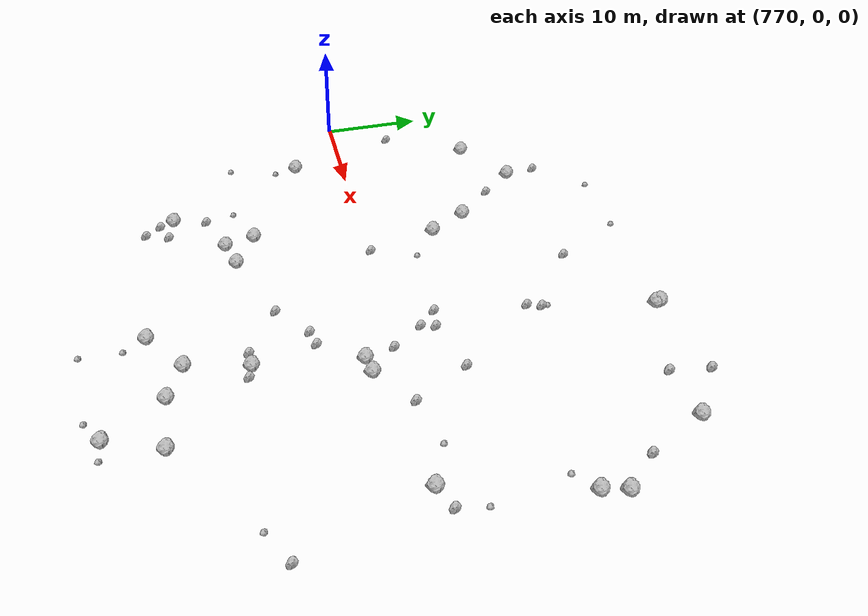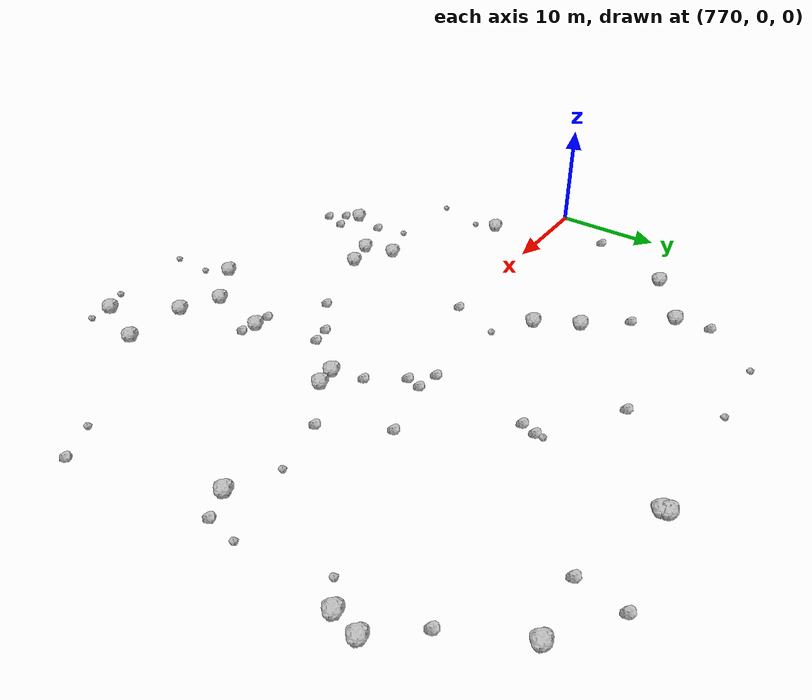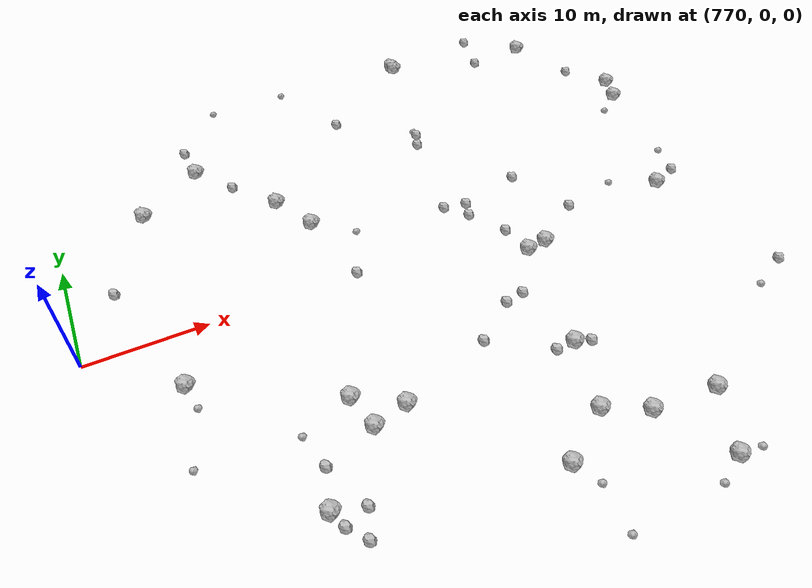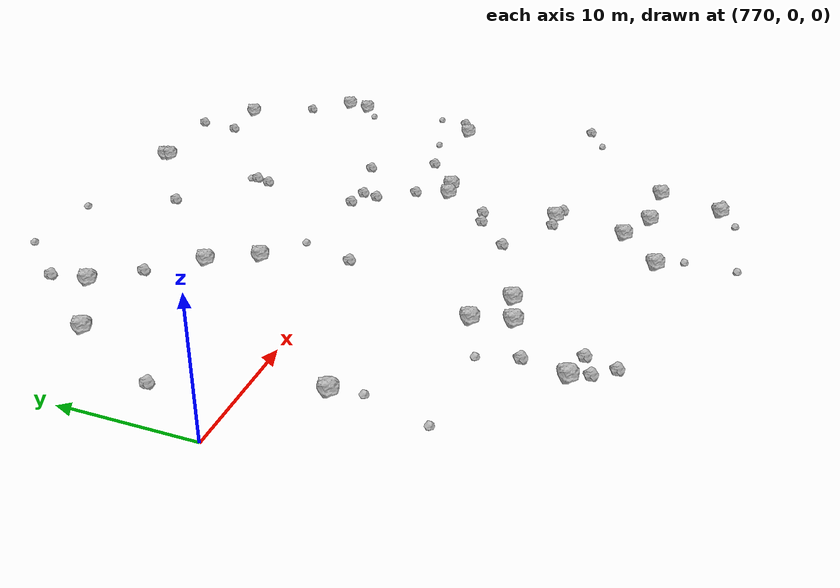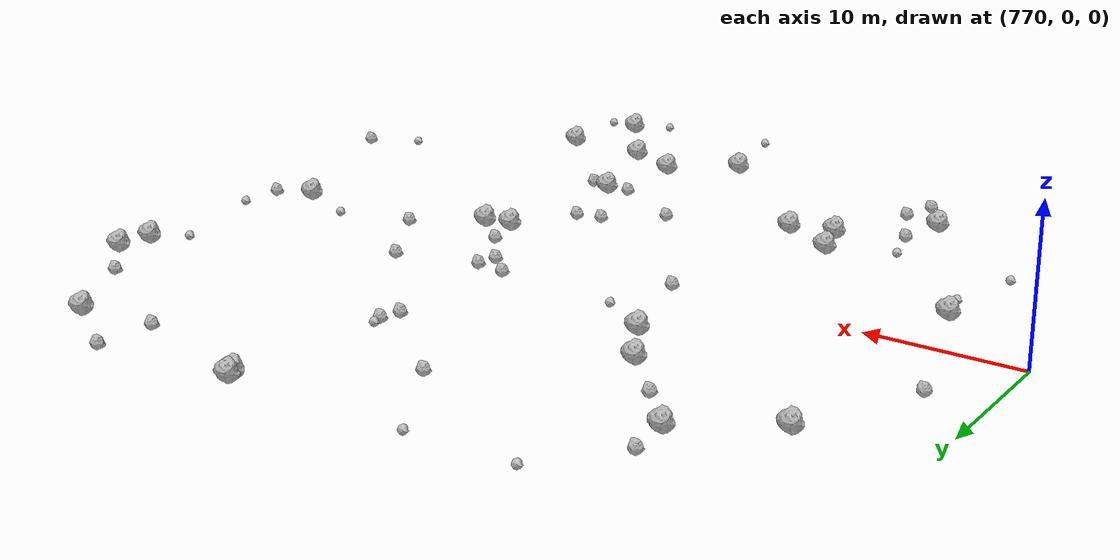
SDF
<sdf version="1.6">
 <world name="default">
  <include><uri>model://sun</uri></include>
  <model name="rock1_20_4">
   <include><uri>model://rock1</uri><pose>791.4666425375727 -13.03058636200091 0.5 0 0 0</pose></include>
  </model>
  <model name="rock1_20_5">
   <include><uri>model://rock1</uri><pose>776.9603028586158 -5.022826929092009 0.5 0 0 0</pose></include>
  </model>
  <model name="rock1_20_6">
   <include><uri>model://rock1</uri><pose>783.095286753257 17.14521938020757 0.5 0 0 0</pose></include>
  </model>
  <model name="rock1_20_7">
   <include><uri>model://rock1</uri><pose>805.854332027045 24.3754903026815 0.5 0 0 0</pose></include>
  </model>
  <model name="rock1_20_8">
   <include><uri>model://rock1</uri><pose>821.4512409785049 -0.9378456450066288 0.5 0 0 0</pose></include>
  </model>
  <model name="rock1_20_9">
   <include><uri>model://rock1</uri><pose>800.1190686362452 -22.0081662223617 0.5 0 0 0</pose></include>
  </model>
  <model name="rock1_20_10">
   <include><uri>model://rock1</uri><pose>788.7987412484498 10.511575808086377 0.5 0 0 0</pose></include>
  </model>
  <model name="rock1_20_11">
   <include><uri>model://rock1</uri><pose>807.6609838503462 -20.676786724740374 0.5 0 0 0</pose></include>
  </model>
  <model name="rock1_20_12">
   <include><uri>model://rock1</uri><pose>813.1277800060686 -20.979362107433204 0.5 0 0 0</pose></include>
  </model>
  <model name="rock1_20_13">
   <include><uri>model://rock1</uri><pose>790.8317216719361 6.855091411269306 0.5 0 0 0</pose></include>
  </model>
  <model name="rock1_20_14">
   <include><uri>model://rock1</uri><pose>788.6102454924543 -13.79744508564237 0.5 0 0 0</pose></include>
  </model>
  <model name="rock1_20_15">
   <include><uri>model://rock1</uri><pose>805.7602082515249 24.815229315916582 0.5 0 0 0</pose></include>
  </model>
  <model name="rock1_20_16">
   <include><uri>model://rock1</uri><pose>806.8023801786753 -3.4047949605102907 0.5 0 0 0</pose></include>
  </model>
  <model name="rock1_20_17">
   <include><uri>model://rock1</uri><pose>825.1268144340089 13.589820978090948 0.5 0 0 0</pose></include>
  </model>
  <model name="rock1_20_18">
   <include><uri>model://rock1</uri><pose>824.6021224888202 11.357103980984832 0.5 0 0 0</pose></include>
  </model>
  <model name="rock1_20_19">
   <include><uri>model://rock1</uri><pose>804.224759663391 -19.03799387916756 0.5 0 0 0</pose></include>
  </model>
  <model name="rock1_20_20">
   <include><uri>model://rock1</uri><pose>787.844442669956 -10.89560821022367 0.5 0 0 0</pose></include>
  </model>
  <model name="rock1_20_21">
   <include><uri>model://rock1</uri><pose>805.5210910758994 -13.21432595026517 0.5 0 0 0</pose></include>
  </model>
  <model name="rock1_20_22">
   <include><uri>model://rock1</uri><pose>808.5885384766866 -3.1349407200695687 0.5 0 0 0</pose></include>
  </model>
  <model name="rock1_20_23">
   <include><uri>model://rock1</uri><pose>777.5550138797414 13.551374894194801 0.5 0 0 0</pose></include>
  </model>
  <model name="rock1_20_24">
   <include><uri>model://rock1</uri><pose>811.2071798080663 -26.09429019685638 0.5 0 0 0</pose></include>
  </model>
  <model name="rock1_20_25">
   <include><uri>model://rock1</uri><pose>783.5454987637899 -18.572890875977727 0.5 0 0 0</pose></include>
  </model>
  <model name="rock1_20_26">
   <include><uri>model://rock1</uri><pose>819.3691722373898 22.367896556180916 0.5 0 0 0</pose></include>
  </model>
  <model name="rock2_20_0">
   <include><uri>model://rock2</uri><pose>784.3109311059033 -15.344758630019106 0.3 0 0 0</pose></include>
  </model>
  <model name="rock2_20_1">
   <include><uri>model://rock2</uri><pose>803.8589564383766 -13.268539937824727 0.3 0 0 0</pose></include>
  </model>
  <model name="rock2_20_2">
   <include><uri>model://rock2</uri><pose>785.9694563576141 -19.192726663313728 0.3 0 0 0</pose></include>
  </model>
  <model name="rock2_20_3">
   <include><uri>model://rock2</uri><pose>785.642235359449 14.038566041786417 0.3 0 0 0</pose></include>
  </model>
  <model name="rock2_20_4">
   <include><uri>model://rock2</uri><pose>797.2814012147419 18.45565408540385 0.3 0 0 0</pose></include>
  </model>
  <model name="rock2_20_5">
   <include><uri>model://rock2</uri><pose>803.8379526747592 13.911294230979053 0.3 0 0 0</pose></include>
  </model>
  <model name="rock2_20_6">
   <include><uri>model://rock2</uri><pose>784.0578042048338 -19.94218007441508 0.3 0 0 0</pose></include>
  </model>
  <model name="rock2_20_7">
   <include><uri>model://rock2</uri><pose>785.2116720055546 -21.412971863528266 0.3 0 0 0</pose></include>
  </model>
  <model name="rock2_20_8">
   <include><uri>model://rock2</uri><pose>822.1570713610363 16.81000178940225 0.3 0 0 0</pose></include>
  </model>
  <model name="rock2_20_9">
   <include><uri>model://rock2</uri><pose>804.2373948893746 3.649993591656603 0.3 0 0 0</pose></include>
  </model>
  <model name="rock2_20_10">
   <include><uri>model://rock2</uri><pose>803.3909284880732 12.604062208344168 0.3 0 0 0</pose></include>
  </model>
  <model name="rock2_20_11">
   <include><uri>model://rock2</uri><pose>823.68093332917 0.02991730289723904 0.3 0 0 0</pose></include>
  </model>
  <model name="rock2_20_12">
   <include><uri>model://rock2</uri><pose>806.7834557916229 -13.587207068536113 0.3 0 0 0</pose></include>
  </model>
  <model name="rock2_20_13">
   <include><uri>model://rock2</uri><pose>812.5684284924383 -0.2411073923276028 0.3 0 0 0</pose></include>
  </model>
  <model name="rock2_20_14">
   <include><uri>model://rock2</uri><pose>814.6101818042782 25.701480147162634 0.3 0 0 0</pose></include>
  </model>
  <model name="rock2_20_15">
   <include><uri>model://rock2</uri><pose>825.6253303992729 -12.707024717981326 0.3 0 0 0</pose></include>
  </model>
  <model name="rock2_20_16">
   <include><uri>model://rock2</uri><pose>802.440388021766 -7.6366658859135015 0.3 0 0 0</pose></include>
  </model>
  <model name="rock2_20_17">
   <include><uri>model://rock2</uri><pose>782.6997198246107 20.237022381771567 0.3 0 0 0</pose></include>
  </model>
  <model name="rock2_20_18">
   <include><uri>model://rock2</uri><pose>809.5965434521848 5.0176114047578935 0.3 0 0 0</pose></include>
  </model>
  <model name="rock2_20_19">
   <include><uri>model://rock2</uri><pose>799.0605065428991 -10.278466301921757 0.3 0 0 0</pose></include>
  </model>
  <model name="rock2_20_20">
   <include><uri>model://rock2</uri><pose>805.9930807961622 -0.6272269537310784 0.3 0 0 0</pose></include>
  </model>
  <model name="rock2_20_21">
   <include><uri>model://rock2</uri><pose>792.485672648338 0.10401497449198871 0.3 0 0 0</pose></include>
  </model>
  <model name="rock2_20_22">
   <include><uri>model://rock2</uri><pose>802.2200907102917 3.987119645588514 0.3 0 0 0</pose></include>
  </model>
  <model name="rock2_20_23">
   <include><uri>model://rock2</uri><pose>773.5955765236795 5.868531188666566 0.3 0 0 0</pose></include>
  </model>
  <model name="rock2_20_24">
   <include><uri>model://rock2</uri><pose>803.8840177607726 2.3113797583731994 0.3 0 0 0</pose></include>
  </model>
  <model name="rock2_20_25">
   <include><uri>model://rock2</uri><pose>814.0925665101905 21.955881822022263 0.3 0 0 0</pose></include>
  </model>
  <model name="rock2_20_26">
   <include><uri>model://rock2</uri><pose>804.0940105166749 -7.281176317001503 0.3 0 0 0</pose></include>
  </model>
  <model name="rock3_20_0">
   <include><uri>model://rock3</uri><pose>801.2158190659309 -24.122082628037965 0.2 0 0 0</pose></include>
  </model>
  <model name="rock3_20_1">
   <include><uri>model://rock3</uri><pose>817.4098672426625 0.8392636433138065 0.2 0 0 0</pose></include>
  </model>
  <model name="rock3_20_2">
   <include><uri>model://rock3</uri><pose>803.7724954975579 14.48897943537726 0.2 0 0 0</pose></include>
  </model>
  <model name="rock3_20_3">
   <include><uri>model://rock3</uri><pose>808.893552289197 -27.480599873516496 0.2 0 0 0</pose></include>
  </model>
  <model name="rock3_20_4">
   <include><uri>model://rock3</uri><pose>822.5014102929686 -14.363023717453238 0.2 0 0 0</pose></include>
  </model>
  <model name="rock3_20_5">
   <include><uri>model://rock3</uri><pose>783.5439409682484 -12.518998137134059 0.2 0 0 0</pose></include>
  </model>
  <model name="rock3_20_6">
   <include><uri>model://rock3</uri><pose>824.0868582665319 2.6713422158037474 0.2 0 0 0</pose></include>
  </model>
  <model name="rock3_20_7">
   <include><uri>model://rock3</uri><pose>801.1128638753717 -27.990010036949112 0.2 0 0 0</pose></include>
  </model>
  <model name="rock3_20_8">
   <include><uri>model://rock3</uri><pose>793.6598961495954 24.902113351190188 0.2 0 0 0</pose></include>
  </model>
  <model name="rock3_20_9">
   <include><uri>model://rock3</uri><pose>775.8261712955485 -11.970488860404732 0.2 0 0 0</pose></include>
  </model>
  <model name="rock3_20_10">
   <include><uri>model://rock3</uri><pose>822.5509467092756 9.756453479077408 0.2 0 0 0</pose></include>
  </model>
  <model name="rock3_20_11">
   <include><uri>model://rock3</uri><pose>794.0895763843627 4.443670066452924 0.2 0 0 0</pose></include>
  </model>
  <model name="rock3_20_12">
   <include><uri>model://rock3</uri><pose>813.0779383836609 -26.28572300640167 0.2 0 0 0</pose></include>
  </model>
  <model name="rock3_20_13">
   <include><uri>model://rock3</uri><pose>786.6409129267801 24.852457514205298 0.2 0 0 0</pose></include>
  </model>
  <model name="rock3_20_14">
   <include><uri>model://rock3</uri><pose>777.2872753515135 -7.258359013949118 0.2 0 0 0</pose></include>
  </model>
 </world>
</sdf>
